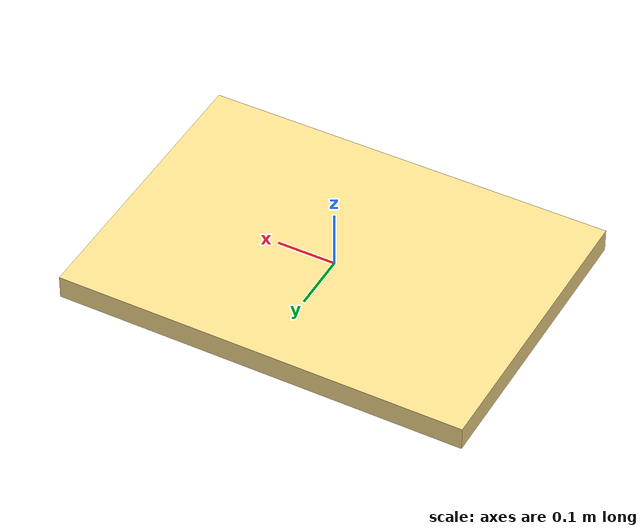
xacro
<?xml version="1.0"?>
<robot name="table" xmlns:xacro="http://www.ros.org/wiki/xacro">

<!-- Import Rviz colors -->
<xacro:include filename="$(find table_description)/urdf/materials.xacro" />

<xacro:property name="table_l"  value="0.7"    />
<xacro:property name="table_h"  value="0.5"   />
<xacro:property name="table_w"  value="0.04"   />

<xacro:macro name="box_I" params="m w h d">
    <inertia ixx="${1/12 * m * (d*d  + h * h)}" ixy="0.0" ixz="0.0" iyy="${1/12 * m * (h * h + w * w)}" iyz="0.0" izz="${1/12 * m * (w * w + d * d)}" />
</xacro:macro>

<xacro:macro name="cube">
<link name="cube_link">
	<visual>
		<origin xyz="0 0 0" rpy="0 0 0"/>
		<geometry>
			<box size="${table_l} ${table_h} ${table_w}"/>
		</geometry>
 		<material name="Wood">
 			<color rgba="1 0.88 0.56 1"/>
        	</material>
        </visual>

	<inertial>
		<origin xyz="0 0 0" rpy="0 0 0"/>
		<mass value="1"/>
		<xacro:box_I m="1.0" w="${table_w}" h="${table_h}" d="${table_l}"/>
	</inertial>

	<collision>
		<origin xyz="0 0 0" rpy="0 0 0"/>
		<geometry>
			<box size="${table_l} ${table_h} ${table_w}"/>
		</geometry>
  	</collision>

</link>
</xacro:macro>

<xacro:cube/>

</robot>
